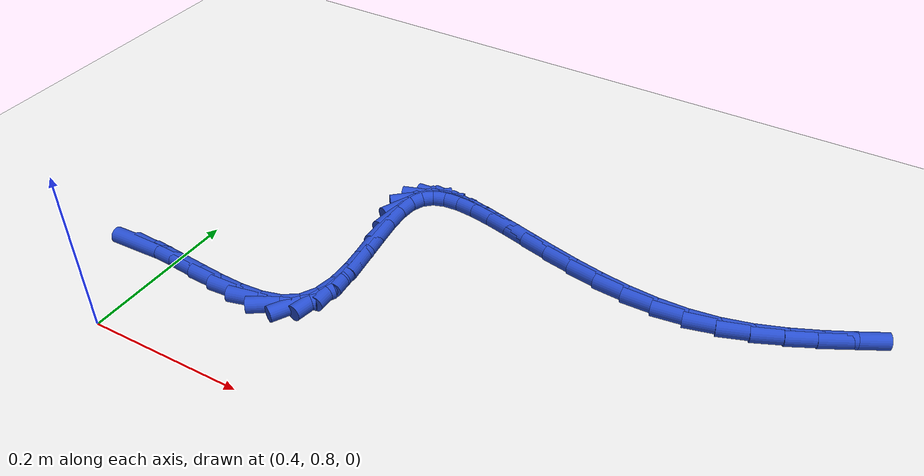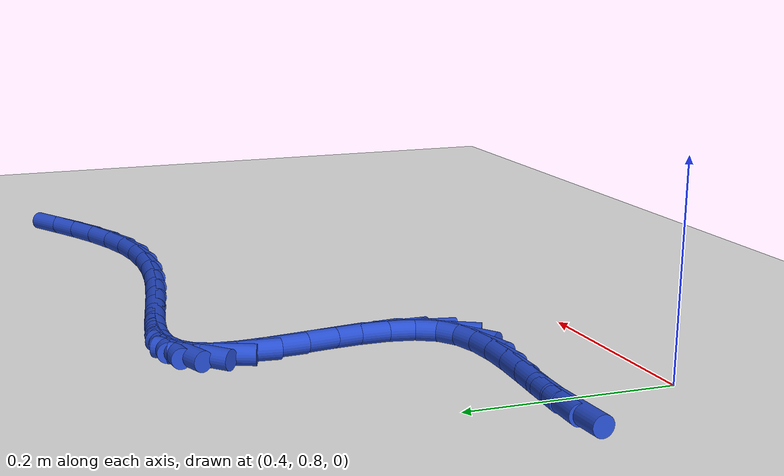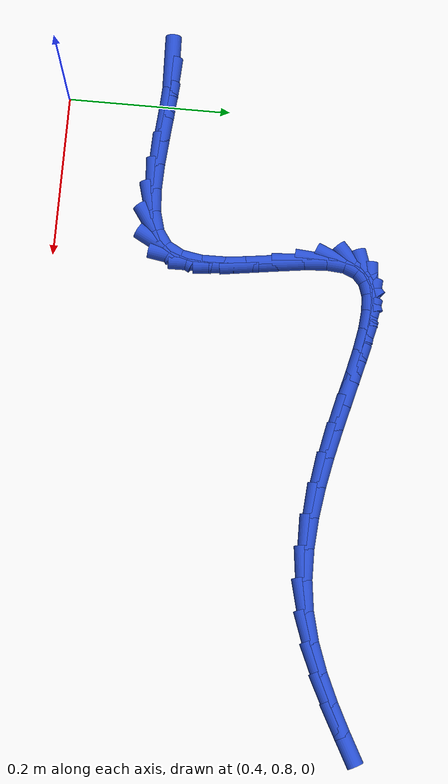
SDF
<sdf version="1.6">
 <world name="default">
  <model name="ground_plane">
   <static>1</static>
   <link name="link">
    <collision name="collision">
     <geometry><plane><normal>0 0 1</normal><size>100 100</size></plane></geometry>
     <surface><friction><ode><mu>100</mu><mu2>50</mu2></ode></friction></surface>
    </collision>
    <visual name="visual">
     <cast_shadows>0</cast_shadows>
     <geometry><plane><normal>0 0 1</normal><size>100 100</size></plane></geometry>
     <material>
      <script><uri>file://media/materials/scripts/gazebo.material</uri><name>Gazebo/WhiteGlow</name></script>
     </material>
    </visual>
   </link>
  </model>
  <model name="line">
   <link name="link_38">
    <pose>0.3509270627931485 0.9230846592993166 0.01 0 1.57 0.0330174391332561</pose>
    <collision name="collision">
     <geometry><cylinder><radius>0.01</radius><length>0.08</length></cylinder></geometry>
    </collision>
    <visual name="visual">
     <material>
      <script><name>Gazebo/Blue</name><uri>file://media/materials/scripts/gazebo.material</uri></script>
     </material>
     <geometry><cylinder><radius>0.01</radius><length>0.08</length></cylinder></geometry>
    </visual>
   </link>
   <link name="link_39">
    <pose>0.37917514242082 0.9240176776174045 0.01 0 1.57 -0.05516395849247522</pose>
    <collision name="collision">
     <geometry><cylinder><radius>0.01</radius><length>0.08</length></cylinder></geometry>
    </collision>
    <visual name="visual">
     <material>
      <script><name>Gazebo/Blue</name><uri>file://media/materials/scripts/gazebo.material</uri></script>
     </material>
     <geometry><cylinder><radius>0.01</radius><length>0.08</length></cylinder></geometry>
    </visual>
   </link>
   <link name="link_40">
    <pose>0.4108839985320772 0.9222667151386378 0.01 0 1.57 -0.08862983513350375</pose>
    <collision name="collision">
     <geometry><cylinder><radius>0.01</radius><length>0.08</length></cylinder></geometry>
    </collision>
    <visual name="visual">
     <material>
      <script><name>Gazebo/Blue</name><uri>file://media/materials/scripts/gazebo.material</uri></script>
     </material>
     <geometry><cylinder><radius>0.01</radius><length>0.08</length></cylinder></geometry>
    </visual>
   </link>
   <link name="link_41">
    <pose>0.44442614397726493 0.9192860716633839 0.01 0 1.57 -0.08148413370866106</pose>
    <collision name="collision">
     <geometry><cylinder><radius>0.01</radius><length>0.08</length></cylinder></geometry>
    </collision>
    <visual name="visual">
     <material>
      <script><name>Gazebo/Blue</name><uri>file://media/materials/scripts/gazebo.material</uri></script>
     </material>
     <geometry><cylinder><radius>0.01</radius><length>0.08</length></cylinder></geometry>
    </visual>
   </link>
   <link name="link_42">
    <pose>0.47817409160672697 0.9165300469920091 0.01 0 1.57 -0.03330752268638558</pose>
    <collision name="collision">
     <geometry><cylinder><radius>0.01</radius><length>0.08</length></cylinder></geometry>
    </collision>
    <visual name="visual">
     <material>
      <script><name>Gazebo/Blue</name><uri>file://media/materials/scripts/gazebo.material</uri></script>
     </material>
     <geometry><cylinder><radius>0.01</radius><length>0.08</length></cylinder></geometry>
    </visual>
   </link>
   <link name="link_43">
    <pose>0.510500354270808 0.9154529409248807 0.01 0 1.57 0.07011427377807904</pose>
    <collision name="collision">
     <geometry><cylinder><radius>0.01</radius><length>0.08</length></cylinder></geometry>
    </collision>
    <visual name="visual">
     <material>
      <script><name>Gazebo/Blue</name><uri>file://media/materials/scripts/gazebo.material</uri></script>
     </material>
     <geometry><cylinder><radius>0.01</radius><length>0.08</length></cylinder></geometry>
    </visual>
   </link>
   <link name="link_44">
    <pose>0.5397774448198527 0.9175090532623656 0.01 0 1.57 0.2637691991494465</pose>
    <collision name="collision">
     <geometry><cylinder><radius>0.01</radius><length>0.08</length></cylinder></geometry>
    </collision>
    <visual name="visual">
     <material>
      <script><name>Gazebo/Blue</name><uri>file://media/materials/scripts/gazebo.material</uri></script>
     </material>
     <geometry><cylinder><radius>0.01</radius><length>0.08</length></cylinder></geometry>
    </visual>
   </link>
   <link name="link_45">
    <pose>0.5643778761042046 0.9241526838048302 0.01 0 1.57 0.6062385637772806</pose>
    <collision name="collision">
     <geometry><cylinder><radius>0.01</radius><length>0.08</length></cylinder></geometry>
    </collision>
    <visual name="visual">
     <material>
      <script><name>Gazebo/Blue</name><uri>file://media/materials/scripts/gazebo.material</uri></script>
     </material>
     <geometry><cylinder><radius>0.01</radius><length>0.08</length></cylinder></geometry>
    </visual>
   </link>
   <link name="link_46">
    <pose>0.5826741609742089 0.9368381323526419 0.01 0 1.57 1.0689722509299344</pose>
    <collision name="collision">
     <geometry><cylinder><radius>0.01</radius><length>0.08</length></cylinder></geometry>
    </collision>
    <visual name="visual">
     <material>
      <script><name>Gazebo/Blue</name><uri>file://media/materials/scripts/gazebo.material</uri></script>
     </material>
     <geometry><cylinder><radius>0.01</radius><length>0.08</length></cylinder></geometry>
    </visual>
   </link>
   <link name="link_47">
    <pose>0.5934992053485492 0.9565676216216292 0.01 0 1.57 1.400498101186811</pose>
    <collision name="collision">
     <geometry><cylinder><radius>0.01</radius><length>0.08</length></cylinder></geometry>
    </collision>
    <visual name="visual">
     <material>
      <script><name>Gazebo/Blue</name><uri>file://media/materials/scripts/gazebo.material</uri></script>
     </material>
     <geometry><cylinder><radius>0.01</radius><length>0.08</length></cylinder></geometry>
    </visual>
   </link>
   <link name="link_48">
    <pose>0.5979015104187928 0.982167798889243 0.01 0 1.57 -1.5604646393977564</pose>
    <collision name="collision">
     <geometry><cylinder><radius>0.01</radius><length>0.08</length></cylinder></geometry>
    </collision>
    <visual name="visual">
     <material>
      <script><name>Gazebo/Blue</name><uri>file://media/materials/scripts/gazebo.material</uri></script>
     </material>
     <geometry><cylinder><radius>0.01</radius><length>0.08</length></cylinder></geometry>
    </visual>
   </link>
   <link name="link_49">
    <pose>0.5975952281650001 1.0118116841555547 0.01 0 1.57 -1.4675695189759064</pose>
    <collision name="collision">
     <geometry><cylinder><radius>0.01</radius><length>0.08</length></cylinder></geometry>
    </collision>
    <visual name="visual">
     <material>
      <script><name>Gazebo/Blue</name><uri>file://media/materials/scripts/gazebo.material</uri></script>
     </material>
     <geometry><cylinder><radius>0.01</radius><length>0.08</length></cylinder></geometry>
    </visual>
   </link>
   <link name="link_50">
    <pose>0.5942946401174354 1.0436721702104728 0.01 0 1.57 -1.4297054764931552</pose>
    <collision name="collision">
     <geometry><cylinder><radius>0.01</radius><length>0.08</length></cylinder></geometry>
    </collision>
    <visual name="visual">
     <material>
      <script><name>Gazebo/Blue</name><uri>file://media/materials/scripts/gazebo.material</uri></script>
     </material>
     <geometry><cylinder><radius>0.01</radius><length>0.08</length></cylinder></geometry>
    </visual>
   </link>
   <link name="link_51">
    <pose>0.5897140278063623 1.0759221498439033 0.01 0 1.57 -1.437031999981583</pose>
    <collision name="collision">
     <geometry><cylinder><radius>0.01</radius><length>0.08</length></cylinder></geometry>
    </collision>
    <visual name="visual">
     <material>
      <script><name>Gazebo/Blue</name><uri>file://media/materials/scripts/gazebo.material</uri></script>
     </material>
     <geometry><cylinder><radius>0.01</radius><length>0.08</length></cylinder></geometry>
    </visual>
   </link>
   <link name="link_52">
    <pose>0.5855676727620449 1.1067345158457556 0.01 0 1.57 -1.4984008548374255</pose>
    <collision name="collision">
     <geometry><cylinder><radius>0.01</radius><length>0.08</length></cylinder></geometry>
    </collision>
    <visual name="visual">
     <material>
      <script><name>Gazebo/Blue</name><uri>file://media/materials/scripts/gazebo.material</uri></script>
     </material>
     <geometry><cylinder><radius>0.01</radius><length>0.08</length></cylinder></geometry>
    </visual>
   </link>
   <link name="link_53">
    <pose>0.5835698565147471 1.1342821610059355 0.01 0 1.57 1.4880102411819423</pose>
    <collision name="collision">
     <geometry><cylinder><radius>0.01</radius><length>0.08</length></cylinder></geometry>
    </collision>
    <visual name="visual">
     <material>
      <script><name>Gazebo/Blue</name><uri>file://media/materials/scripts/gazebo.material</uri></script>
     </material>
     <geometry><cylinder><radius>0.01</radius><length>0.08</length></cylinder></geometry>
    </visual>
   </link>
   <link name="link_54">
    <pose>0.5854333013477845 1.156739870062657 0.01 0 1.57 1.169242942604346</pose>
    <collision name="collision">
     <geometry><cylinder><radius>0.01</radius><length>0.08</length></cylinder></geometry>
    </collision>
    <visual name="visual">
     <material>
      <script><name>Gazebo/Blue</name><uri>file://media/materials/scripts/gazebo.material</uri></script>
     </material>
     <geometry><cylinder><radius>0.01</radius><length>0.08</length></cylinder></geometry>
    </visual>
   </link>
   <link name="link_55">
    <pose>0.5923179008458157 1.172953215226747 0.01 0 1.57 0.7301037879904235</pose>
    <collision name="collision">
     <geometry><cylinder><radius>0.01</radius><length>0.08</length></cylinder></geometry>
    </collision>
    <visual name="visual">
     <material>
      <script><name>Gazebo/Blue</name><uri>file://media/materials/scripts/gazebo.material</uri></script>
     </material>
     <geometry><cylinder><radius>0.01</radius><length>0.08</length></cylinder></geometry>
    </visual>
   </link>
   <link name="link_56">
    <pose>0.6040173656679337 1.1834254583224633 0.01 0 1.57 0.32839301494931356</pose>
    <collision name="collision">
     <geometry><cylinder><radius>0.01</radius><length>0.08</length></cylinder></geometry>
    </collision>
    <visual name="visual">
     <material>
      <script><name>Gazebo/Blue</name><uri>file://media/materials/scripts/gazebo.material</uri></script>
     </material>
     <geometry><cylinder><radius>0.01</radius><length>0.08</length></cylinder></geometry>
    </visual>
   </link>
   <link name="link_57">
    <pose>0.6201180577869234 1.1889114524926327 0.01 0 1.57 0.06237322992467666</pose>
    <collision name="collision">
     <geometry><cylinder><radius>0.01</radius><length>0.08</length></cylinder></geometry>
    </collision>
    <visual name="visual">
     <material>
      <script><name>Gazebo/Blue</name><uri>file://media/materials/scripts/gazebo.material</uri></script>
     </material>
     <geometry><cylinder><radius>0.01</radius><length>0.08</length></cylinder></geometry>
    </visual>
   </link>
   <link name="link_58">
    <pose>0.6402063391755705 1.1901660508800822 0.01 0 1.57 -0.09362801122148666</pose>
    <collision name="collision">
     <geometry><cylinder><radius>0.01</radius><length>0.08</length></cylinder></geometry>
    </collision>
    <visual name="visual">
     <material>
      <script><name>Gazebo/Blue</name><uri>file://media/materials/scripts/gazebo.material</uri></script>
     </material>
     <geometry><cylinder><radius>0.01</radius><length>0.08</length></cylinder></geometry>
    </visual>
   </link>
   <link name="link_59">
    <pose>0.6638685718066603 1.1879441066276388 0.01 0 1.57 -0.18226344772969358</pose>
    <collision name="collision">
     <geometry><cylinder><radius>0.01</radius><length>0.08</length></cylinder></geometry>
    </collision>
    <visual name="visual">
     <material>
      <script><name>Gazebo/Blue</name><uri>file://media/materials/scripts/gazebo.material</uri></script>
     </material>
     <geometry><cylinder><radius>0.01</radius><length>0.08</length></cylinder></geometry>
    </visual>
   </link>
   <link name="link_60">
    <pose>0.6906911176529775 1.1830004728781294 0.01 0 1.57 -0.22958422991078015</pose>
    <collision name="collision">
     <geometry><cylinder><radius>0.01</radius><length>0.08</length></cylinder></geometry>
    </collision>
    <visual name="visual">
     <material>
      <script><name>Gazebo/Blue</name><uri>file://media/materials/scripts/gazebo.material</uri></script>
     </material>
     <geometry><cylinder><radius>0.01</radius><length>0.08</length></cylinder></geometry>
    </visual>
   </link>
   <link name="link_61">
    <pose>0.7202603386873081 1.1760900027743808 0.01 0 1.57 -0.24930744057180185</pose>
    <collision name="collision">
     <geometry><cylinder><radius>0.01</radius><length>0.08</length></cylinder></geometry>
    </collision>
    <visual name="visual">
     <material>
      <script><name>Gazebo/Blue</name><uri>file://media/materials/scripts/gazebo.material</uri></script>
     </material>
     <geometry><cylinder><radius>0.01</radius><length>0.08</length></cylinder></geometry>
    </visual>
   </link>
   <link name="link_62">
    <pose>0.752162596882437 1.16796754945922 0.01 0 1.57 -0.24843099723452633</pose>
    <collision name="collision">
     <geometry><cylinder><radius>0.01</radius><length>0.08</length></cylinder></geometry>
    </collision>
    <visual name="visual">
     <material>
      <script><name>Gazebo/Blue</name><uri>file://media/materials/scripts/gazebo.material</uri></script>
     </material>
     <geometry><cylinder><radius>0.01</radius><length>0.08</length></cylinder></geometry>
    </visual>
   </link>
   <link name="link_63">
    <pose>0.7859842542111501 1.159387966075474 0.01 0 1.57 -0.23027316106922283</pose>
    <collision name="collision">
     <geometry><cylinder><radius>0.01</radius><length>0.08</length></cylinder></geometry>
    </collision>
    <visual name="visual">
     <material>
      <script><name>Gazebo/Blue</name><uri>file://media/materials/scripts/gazebo.material</uri></script>
     </material>
     <geometry><cylinder><radius>0.01</radius><length>0.08</length></cylinder></geometry>
    </visual>
   </link>
   <link name="link_64">
    <pose>0.821311672646232 1.1511061057659697 0.01 0 1.57 -0.19595297176354545</pose>
    <collision name="collision">
     <geometry><cylinder><radius>0.01</radius><length>0.08</length></cylinder></geometry>
    </collision>
    <visual name="visual">
     <material>
      <script><name>Gazebo/Blue</name><uri>file://media/materials/scripts/gazebo.material</uri></script>
     </material>
     <geometry><cylinder><radius>0.01</radius><length>0.08</length></cylinder></geometry>
    </visual>
   </link>
   <link name="link_65">
    <pose>0.8577312141604678 1.1438768216735338 0.01 0 1.57 -0.14512197979115246</pose>
    <collision name="collision">
     <geometry><cylinder><radius>0.01</radius><length>0.08</length></cylinder></geometry>
    </collision>
    <visual name="visual">
     <material>
      <script><name>Gazebo/Blue</name><uri>file://media/materials/scripts/gazebo.material</uri></script>
     </material>
     <geometry><cylinder><radius>0.01</radius><length>0.08</length></cylinder></geometry>
    </visual>
   </link>
   <link name="link_66">
    <pose>0.8948292407266442 1.1384549669409936 0.01 0 1.57 -0.07638621077039279</pose>
    <collision name="collision">
     <geometry><cylinder><radius>0.01</radius><length>0.08</length></cylinder></geometry>
    </collision>
    <visual name="visual">
     <material>
      <script><name>Gazebo/Blue</name><uri>file://media/materials/scripts/gazebo.material</uri></script>
     </material>
     <geometry><cylinder><radius>0.01</radius><length>0.08</length></cylinder></geometry>
    </visual>
   </link>
   <link name="link_67">
    <pose>0.9321921143175452 1.135595394711176 0.01 0 1.57 0.012294817665572024</pose>
    <collision name="collision">
     <geometry><cylinder><radius>0.01</radius><length>0.08</length></cylinder></geometry>
    </collision>
    <visual name="visual">
     <material>
      <script><name>Gazebo/Blue</name><uri>file://media/materials/scripts/gazebo.material</uri></script>
     </material>
     <geometry><cylinder><radius>0.01</radius><length>0.08</length></cylinder></geometry>
    </visual>
   </link>
   <link name="link_68">
    <pose>0.9694061969059568 1.1360529581269074 0.01 0 1.57 0.12295039126527911</pose>
    <collision name="collision">
     <geometry><cylinder><radius>0.01</radius><length>0.08</length></cylinder></geometry>
    </collision>
    <visual name="visual">
     <material>
      <script><name>Gazebo/Blue</name><uri>file://media/materials/scripts/gazebo.material</uri></script>
     </material>
     <geometry><cylinder><radius>0.01</radius><length>0.08</length></cylinder></geometry>
    </visual>
   </link>
   <link name="link_69">
    <pose>1.0060578940600193 1.140582143929037 0.01 0 1.57 0.24500196113888262</pose>
    <collision name="collision">
     <geometry><cylinder><radius>0.01</radius><length>0.08</length></cylinder></geometry>
    </collision>
    <visual name="visual">
     <material>
      <script><name>Gazebo/Blue</name><uri>file://media/materials/scripts/gazebo.material</uri></script>
     </material>
     <geometry><cylinder><radius>0.01</radius><length>0.08</length></cylinder></geometry>
    </visual>
   </link>
   <link name="link_70">
    <pose>1.041783929180414 1.149514537081482 0.01 0 1.57 0.3450268204243644</pose>
    <collision name="collision">
     <geometry><cylinder><radius>0.01</radius><length>0.08</length></cylinder></geometry>
    </collision>
    <visual name="visual">
     <material>
      <script><name>Gazebo/Blue</name><uri>file://media/materials/scripts/gazebo.material</uri></script>
     </material>
     <geometry><cylinder><radius>0.01</radius><length>0.08</length></cylinder></geometry>
    </visual>
   </link>
   <link name="link_71">
    <pose>1.0763682636553344 1.1619442446321067 0.01 0 1.57 0.41864341282051465</pose>
    <collision name="collision">
     <geometry><cylinder><radius>0.01</radius><length>0.08</length></cylinder></geometry>
    </collision>
    <visual name="visual">
     <material>
      <script><name>Gazebo/Blue</name><uri>file://media/materials/scripts/gazebo.material</uri></script>
     </material>
     <geometry><cylinder><radius>0.01</radius><length>0.08</length></cylinder></geometry>
    </visual>
   </link>
   <link name="link_72">
    <pose>1.1096216483466217 1.1767402185408755 0.01 0 1.57 0.4677885761827647</pose>
    <collision name="collision">
     <geometry><cylinder><radius>0.01</radius><length>0.08</length></cylinder></geometry>
    </collision>
    <visual name="visual">
     <material>
      <script><name>Gazebo/Blue</name><uri>file://media/materials/scripts/gazebo.material</uri></script>
     </material>
     <geometry><cylinder><radius>0.01</radius><length>0.08</length></cylinder></geometry>
    </visual>
   </link>
   <link name="link_73">
    <pose>1.1413548341161175 1.192771410767753 0.01 0 1.57 0.49313372586930476</pose>
    <collision name="collision">
     <geometry><cylinder><radius>0.01</radius><length>0.08</length></cylinder></geometry>
    </collision>
    <visual name="visual">
     <material>
      <script><name>Gazebo/Blue</name><uri>file://media/materials/scripts/gazebo.material</uri></script>
     </material>
     <geometry><cylinder><radius>0.01</radius><length>0.08</length></cylinder></geometry>
    </visual>
   </link>
  </model>
 </world>
</sdf>
